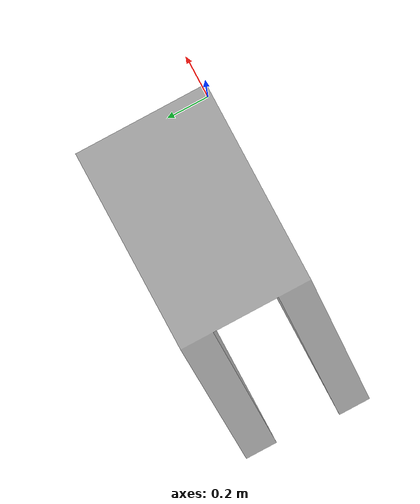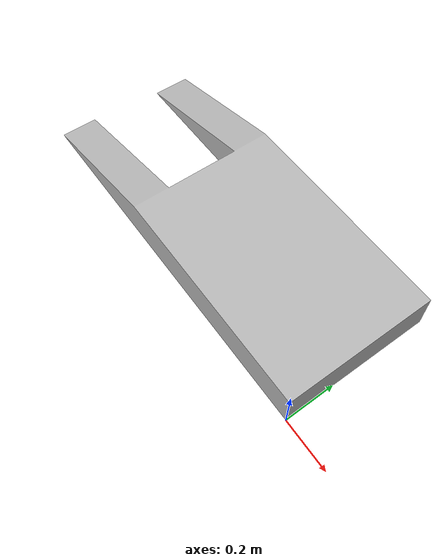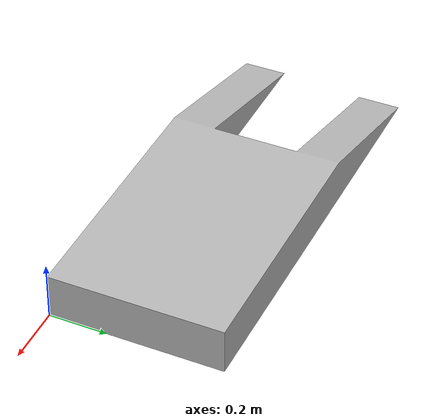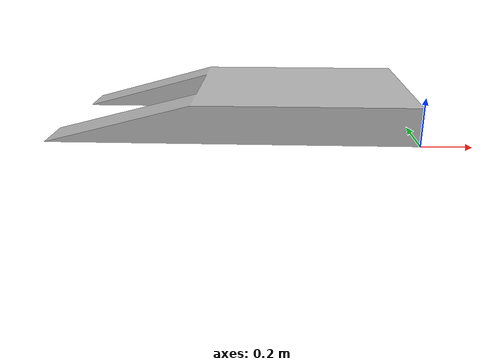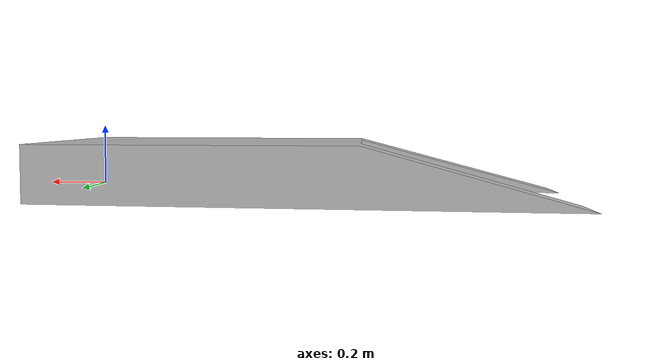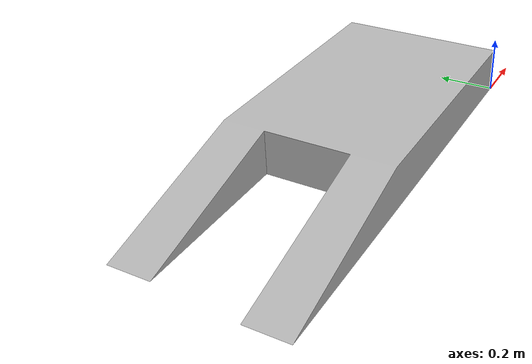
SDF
<?xml version="1.0" ?>
<sdf version="1.4">
  <model name="ramp">
    <static>true</static>
    <link name="link">
      <inertial>
        <mass>25</mass>
      </inertial>
      <collision name="collision">
        <geometry>
          <mesh>
            <uri>model://ramp/meshes/ramp.stl</uri>
          </mesh>
        </geometry>
      </collision>
      <visual name="visual">
        <transparency>0.0</transparency>
        <geometry>
          <mesh>
            <uri>model://ramp/meshes/ramp.stl</uri>
          </mesh>
        </geometry>
      </visual>
    </link>
  </model>
</sdf>
